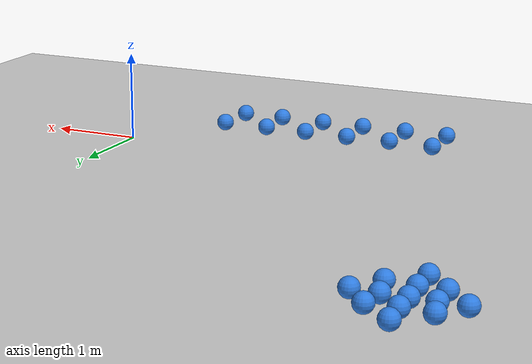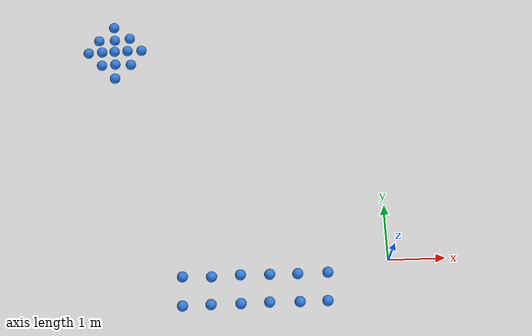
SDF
<sdf version="1.7">
 <world name="default">
  <light name="sun" type="directional">
   <pose>0 0 10 0 -0 0</pose>
   <diffuse>0.8 0.8 0.8 1</diffuse>
   <specular>0.2 0.2 0.2 1</specular>
   <attenuation>
    <range>1000</range>
    <constant>0.9</constant>
    <linear>0.01</linear>
    <quadratic>0.001</quadratic>
   </attenuation>
   <direction>-0.5 0.1 -0.9</direction>
   <spot><inner_angle>0</inner_angle><outer_angle>0</outer_angle><falloff>0</falloff></spot>
  </light>
  <model name="ground_plane">
   <static>1</static>
   <link name="link">
    <collision name="collision">
     <geometry><plane><normal>0 0 1</normal><size>100 100</size></plane></geometry>
     <surface>
      <contact><collide_bitmask>65535</collide_bitmask></contact>
      <friction><ode><mu>100</mu><mu2>50</mu2></ode></friction>
     </surface>
    </collision>
    <visual name="visual">
     <cast_shadows>0</cast_shadows>
     <geometry><plane><normal>0 0 1</normal><size>100 100</size></plane></geometry>
     <material>
      <script><uri>file://media/materials/scripts/gazebo.material</uri><name>Gazebo/Grey</name></script>
     </material>
    </visual>
   </link>
  </model>
  <gravity>0 0 -9.8</gravity>
  <magnetic_field>6e-06 2.3e-05 -4.2e-05</magnetic_field>
  <atmosphere type="adiabatic"/>
  <physics type="ode">
   <max_step_size>0.001</max_step_size>
   <real_time_factor>1</real_time_factor>
   <real_time_update_rate>1000</real_time_update_rate>
  </physics>
  <scene><ambient>0.4 0.4 0.4 1</ambient><background>0.7 0.7 0.7 1</background><shadows>1</shadows></scene>
  <spherical_coordinates>
   <surface_model>EARTH_WGS84</surface_model>
   <latitude_deg>0</latitude_deg>
   <longitude_deg>0</longitude_deg>
   <elevation>0</elevation>
   <heading_deg>0</heading_deg>
  </spherical_coordinates>
  <model name="withballs.sdf">
   <link name="link">
    <inertial>
     <mass>0.35</mass>
     <inertia><ixx>0.035</ixx><ixy>0</ixy><ixz>0</ixz><iyy>0.035</iyy><iyz>0</iyz><izz>0.035</izz></inertia>
    </inertial>
    <kinematic>1</kinematic>
    <pose>0.05 0 0.22 0 -0 0</pose>
    <visual name="visual">
     <geometry><sphere><radius>0.095</radius></sphere></geometry>
     <material>
      <script><name>Gazebo/Grey</name><uri>file://media/materials/scripts/gazebo.material</uri></script>
      <shader type="normal_map_object_space"><normal_map>__default__</normal_map></shader>
      <ambient>0.188 0.494 0.886 1</ambient>
      <diffuse>0.7 0.7 0.7 1</diffuse>
      <specular>0.01 0.01 0.01 1</specular>
      <emissive>0 0 0 1</emissive>
     </material>
     <pose>-0.02 -0.04 0.03 0 -0 0</pose>
    </visual>
    <collision name="collision">
     <pose>-0.02 -0.04 0.03 0 -0 0</pose>
     <geometry><sphere><radius>0.095</radius></sphere></geometry>
     <surface>
      <friction>
       <ode><mu>1</mu><mu2>1</mu2><fdir1>0 0 0</fdir1><slip1>0</slip1><slip2>0</slip2></ode>
       <torsional>
        <coefficient>1</coefficient>
        <patch_radius>0</patch_radius>
        <surface_radius>0</surface_radius>
        <use_patch_radius>1</use_patch_radius>
        <ode><slip>0</slip></ode>
       </torsional>
      </friction>
      <bounce><restitution_coefficient>0</restitution_coefficient><threshold>1e+06</threshold></bounce>
      <contact>
       <collide_without_contact>0</collide_without_contact>
       <collide_without_contact_bitmask>1</collide_without_contact_bitmask>
       <collide_bitmask>1</collide_bitmask>
       <ode>
        <soft_cfm>0</soft_cfm>
        <soft_erp>0.2</soft_erp>
        <kp>1e+13</kp>
        <kd>1</kd>
        <max_vel>0.01</max_vel>
        <min_depth>0</min_depth>
       </ode>
       <bullet>
        <split_impulse>1</split_impulse>
        <split_impulse_penetration_threshold>-0.01</split_impulse_penetration_threshold>
        <soft_cfm>0</soft_cfm>
        <soft_erp>0.2</soft_erp>
        <kp>1e+13</kp>
        <kd>1</kd>
       </bullet>
      </contact>
     </surface>
    </collision>
   </link>
   <link name="link_clone">
    <inertial>
     <mass>0.35</mass>
     <inertia><ixx>0.035</ixx><ixy>0</ixy><ixz>0</ixz><iyy>0.035</iyy><iyz>0</iyz><izz>0.035</izz></inertia>
    </inertial>
    <kinematic>1</kinematic>
    <pose>0.534124 -0.50195 0.22 0 -0 0</pose>
    <visual name="visual">
     <geometry><sphere><radius>0.095</radius></sphere></geometry>
     <material>
      <script><name>Gazebo/Grey</name><uri>file://media/materials/scripts/gazebo.material</uri></script>
      <shader type="normal_map_object_space"><normal_map>__default__</normal_map></shader>
      <ambient>0.188 0.494 0.886 1</ambient>
      <diffuse>0.7 0.7 0.7 1</diffuse>
      <specular>0.01 0.01 0.01 1</specular>
      <emissive>0 0 0 1</emissive>
     </material>
     <pose>-0.02 -0.04 0.03 0 -0 0</pose>
    </visual>
    <collision name="collision">
     <pose>-0.02 -0.04 0.03 0 -0 0</pose>
     <geometry><sphere><radius>0.095</radius></sphere></geometry>
     <surface>
      <friction>
       <ode><mu>1</mu><mu2>1</mu2><fdir1>0 0 0</fdir1><slip1>0</slip1><slip2>0</slip2></ode>
       <torsional>
        <coefficient>1</coefficient>
        <patch_radius>0</patch_radius>
        <surface_radius>0</surface_radius>
        <use_patch_radius>1</use_patch_radius>
        <ode><slip>0</slip></ode>
       </torsional>
      </friction>
      <bounce><restitution_coefficient>0</restitution_coefficient><threshold>1e+06</threshold></bounce>
      <contact>
       <collide_without_contact>0</collide_without_contact>
       <collide_without_contact_bitmask>1</collide_without_contact_bitmask>
       <collide_bitmask>1</collide_bitmask>
       <ode>
        <soft_cfm>0</soft_cfm>
        <soft_erp>0.2</soft_erp>
        <kp>1e+13</kp>
        <kd>1</kd>
        <max_vel>0.01</max_vel>
        <min_depth>0</min_depth>
       </ode>
       <bullet>
        <split_impulse>1</split_impulse>
        <split_impulse_penetration_threshold>-0.01</split_impulse_penetration_threshold>
        <soft_cfm>0</soft_cfm>
        <soft_erp>0.2</soft_erp>
        <kp>1e+13</kp>
        <kd>1</kd>
       </bullet>
      </contact>
     </surface>
    </collision>
   </link>
   <link name="link_clone_0">
    <inertial>
     <mass>0.35</mass>
     <inertia><ixx>0.035</ixx><ixy>0</ixy><ixz>0</ixz><iyy>0.035</iyy><iyz>0</iyz><izz>0.035</izz></inertia>
    </inertial>
    <kinematic>1</kinematic>
    <pose>1.04772 0.001281 0.22 0 -0 0</pose>
    <visual name="visual">
     <geometry><sphere><radius>0.095</radius></sphere></geometry>
     <material>
      <script><name>Gazebo/Grey</name><uri>file://media/materials/scripts/gazebo.material</uri></script>
      <shader type="normal_map_object_space"><normal_map>__default__</normal_map></shader>
      <ambient>0.188 0.494 0.886 1</ambient>
      <diffuse>0.7 0.7 0.7 1</diffuse>
      <specular>0.01 0.01 0.01 1</specular>
      <emissive>0 0 0 1</emissive>
     </material>
     <pose>-0.02 -0.04 0.03 0 -0 0</pose>
    </visual>
    <collision name="collision">
     <pose>-0.02 -0.04 0.03 0 -0 0</pose>
     <geometry><sphere><radius>0.095</radius></sphere></geometry>
     <surface>
      <friction>
       <ode><mu>1</mu><mu2>1</mu2><fdir1>0 0 0</fdir1><slip1>0</slip1><slip2>0</slip2></ode>
       <torsional>
        <coefficient>1</coefficient>
        <patch_radius>0</patch_radius>
        <surface_radius>0</surface_radius>
        <use_patch_radius>1</use_patch_radius>
        <ode><slip>0</slip></ode>
       </torsional>
      </friction>
      <bounce><restitution_coefficient>0</restitution_coefficient><threshold>1e+06</threshold></bounce>
      <contact>
       <collide_without_contact>0</collide_without_contact>
       <collide_without_contact_bitmask>1</collide_without_contact_bitmask>
       <collide_bitmask>1</collide_bitmask>
       <ode>
        <soft_cfm>0</soft_cfm>
        <soft_erp>0.2</soft_erp>
        <kp>1e+13</kp>
        <kd>1</kd>
        <max_vel>0.01</max_vel>
        <min_depth>0</min_depth>
       </ode>
       <bullet>
        <split_impulse>1</split_impulse>
        <split_impulse_penetration_threshold>-0.01</split_impulse_penetration_threshold>
        <soft_cfm>0</soft_cfm>
        <soft_erp>0.2</soft_erp>
        <kp>1e+13</kp>
        <kd>1</kd>
       </bullet>
      </contact>
     </surface>
    </collision>
   </link>
   <link name="link_clone_1">
    <inertial>
     <mass>0.35</mass>
     <inertia><ixx>0.035</ixx><ixy>0</ixy><ixz>0</ixz><iyy>0.035</iyy><iyz>0</iyz><izz>0.035</izz></inertia>
    </inertial>
    <kinematic>1</kinematic>
    <pose>1.5342 -0.493351 0.22 0 -0 0</pose>
    <visual name="visual">
     <geometry><sphere><radius>0.095</radius></sphere></geometry>
     <material>
      <script><name>Gazebo/Grey</name><uri>file://media/materials/scripts/gazebo.material</uri></script>
      <shader type="normal_map_object_space"><normal_map>__default__</normal_map></shader>
      <ambient>0.188 0.494 0.886 1</ambient>
      <diffuse>0.7 0.7 0.7 1</diffuse>
      <specular>0.01 0.01 0.01 1</specular>
      <emissive>0 0 0 1</emissive>
     </material>
     <pose>-0.02 -0.04 0.03 0 -0 0</pose>
    </visual>
    <collision name="collision">
     <pose>-0.02 -0.04 0.03 0 -0 0</pose>
     <geometry><sphere><radius>0.095</radius></sphere></geometry>
     <surface>
      <friction>
       <ode><mu>1</mu><mu2>1</mu2><fdir1>0 0 0</fdir1><slip1>0</slip1><slip2>0</slip2></ode>
       <torsional>
        <coefficient>1</coefficient>
        <patch_radius>0</patch_radius>
        <surface_radius>0</surface_radius>
        <use_patch_radius>1</use_patch_radius>
        <ode><slip>0</slip></ode>
       </torsional>
      </friction>
      <bounce><restitution_coefficient>0</restitution_coefficient><threshold>1e+06</threshold></bounce>
      <contact>
       <collide_without_contact>0</collide_without_contact>
       <collide_without_contact_bitmask>1</collide_without_contact_bitmask>
       <collide_bitmask>1</collide_bitmask>
       <ode>
        <soft_cfm>0</soft_cfm>
        <soft_erp>0.2</soft_erp>
        <kp>1e+13</kp>
        <kd>1</kd>
        <max_vel>0.01</max_vel>
        <min_depth>0</min_depth>
       </ode>
       <bullet>
        <split_impulse>1</split_impulse>
        <split_impulse_penetration_threshold>-0.01</split_impulse_penetration_threshold>
        <soft_cfm>0</soft_cfm>
        <soft_erp>0.2</soft_erp>
        <kp>1e+13</kp>
        <kd>1</kd>
       </bullet>
      </contact>
     </surface>
    </collision>
   </link>
   <link name="link_clone_10">
    <inertial>
     <mass>0.35</mass>
     <inertia><ixx>0.035</ixx><ixy>0</ixy><ixz>0</ixz><iyy>0.035</iyy><iyz>0</iyz><izz>0.035</izz></inertia>
    </inertial>
    <kinematic>1</kinematic>
    <pose>-1.20313 4.63054 0.22 0 -0 0</pose>
    <visual name="visual">
     <geometry><sphere><radius>0.095</radius></sphere></geometry>
     <material>
      <script><name>Gazebo/Grey</name><uri>file://media/materials/scripts/gazebo.material</uri></script>
      <shader type="normal_map_object_space"><normal_map>__default__</normal_map></shader>
      <ambient>0.188 0.494 0.886 1</ambient>
      <diffuse>0.7 0.7 0.7 1</diffuse>
      <specular>0.01 0.01 0.01 1</specular>
      <emissive>0 0 0 1</emissive>
     </material>
     <pose>-0.02 -0.04 0.03 0 -0 0</pose>
    </visual>
    <collision name="collision">
     <pose>-0.02 -0.04 0.03 0 -0 0</pose>
     <geometry><sphere><radius>0.095</radius></sphere></geometry>
     <surface>
      <friction>
       <ode><mu>1</mu><mu2>1</mu2><fdir1>0 0 0</fdir1><slip1>0</slip1><slip2>0</slip2></ode>
       <torsional>
        <coefficient>1</coefficient>
        <patch_radius>0</patch_radius>
        <surface_radius>0</surface_radius>
        <use_patch_radius>1</use_patch_radius>
        <ode><slip>0</slip></ode>
       </torsional>
      </friction>
      <bounce><restitution_coefficient>0</restitution_coefficient><threshold>1e+06</threshold></bounce>
      <contact>
       <collide_without_contact>0</collide_without_contact>
       <collide_without_contact_bitmask>1</collide_without_contact_bitmask>
       <collide_bitmask>1</collide_bitmask>
       <ode>
        <soft_cfm>0</soft_cfm>
        <soft_erp>0.2</soft_erp>
        <kp>1e+13</kp>
        <kd>1</kd>
        <max_vel>0.01</max_vel>
        <min_depth>0</min_depth>
       </ode>
       <bullet>
        <split_impulse>1</split_impulse>
        <split_impulse_penetration_threshold>-0.01</split_impulse_penetration_threshold>
        <soft_cfm>0</soft_cfm>
        <soft_erp>0.2</soft_erp>
        <kp>1e+13</kp>
        <kd>1</kd>
       </bullet>
      </contact>
     </surface>
    </collision>
   </link>
   <link name="link_clone_11">
    <inertial>
     <mass>0.35</mass>
     <inertia><ixx>0.035</ixx><ixy>0</ixy><ixz>0</ixz><iyy>0.035</iyy><iyz>0</iyz><izz>0.035</izz></inertia>
    </inertial>
    <kinematic>1</kinematic>
    <pose>-1.22209 4.90167 0.22 0 -0 0</pose>
    <visual name="visual">
     <geometry><sphere><radius>0.095</radius></sphere></geometry>
     <material>
      <script><name>Gazebo/Grey</name><uri>file://media/materials/scripts/gazebo.material</uri></script>
      <shader type="normal_map_object_space"><normal_map>__default__</normal_map></shader>
      <ambient>0.188 0.494 0.886 1</ambient>
      <diffuse>0.7 0.7 0.7 1</diffuse>
      <specular>0.01 0.01 0.01 1</specular>
      <emissive>0 0 0 1</emissive>
     </material>
     <pose>-0.02 -0.04 0.03 0 -0 0</pose>
    </visual>
    <collision name="collision">
     <pose>-0.02 -0.04 0.03 0 -0 0</pose>
     <geometry><sphere><radius>0.095</radius></sphere></geometry>
     <surface>
      <friction>
       <ode><mu>1</mu><mu2>1</mu2><fdir1>0 0 0</fdir1><slip1>0</slip1><slip2>0</slip2></ode>
       <torsional>
        <coefficient>1</coefficient>
        <patch_radius>0</patch_radius>
        <surface_radius>0</surface_radius>
        <use_patch_radius>1</use_patch_radius>
        <ode><slip>0</slip></ode>
       </torsional>
      </friction>
      <bounce><restitution_coefficient>0</restitution_coefficient><threshold>1e+06</threshold></bounce>
      <contact>
       <collide_without_contact>0</collide_without_contact>
       <collide_without_contact_bitmask>1</collide_without_contact_bitmask>
       <collide_bitmask>1</collide_bitmask>
       <ode>
        <soft_cfm>0</soft_cfm>
        <soft_erp>0.2</soft_erp>
        <kp>1e+13</kp>
        <kd>1</kd>
        <max_vel>0.01</max_vel>
        <min_depth>0</min_depth>
       </ode>
       <bullet>
        <split_impulse>1</split_impulse>
        <split_impulse_penetration_threshold>-0.01</split_impulse_penetration_threshold>
        <soft_cfm>0</soft_cfm>
        <soft_erp>0.2</soft_erp>
        <kp>1e+13</kp>
        <kd>1</kd>
       </bullet>
      </contact>
     </surface>
    </collision>
   </link>
   <link name="link_clone_12">
    <inertial>
     <mass>0.35</mass>
     <inertia><ixx>0.035</ixx><ixy>0</ixy><ixz>0</ixz><iyy>0.035</iyy><iyz>0</iyz><izz>0.035</izz></inertia>
    </inertial>
    <kinematic>1</kinematic>
    <pose>-1.18327 4.12666 0.22 0 -0 0</pose>
    <visual name="visual">
     <geometry><sphere><radius>0.095</radius></sphere></geometry>
     <material>
      <script><name>Gazebo/Grey</name><uri>file://media/materials/scripts/gazebo.material</uri></script>
      <shader type="normal_map_object_space"><normal_map>__default__</normal_map></shader>
      <ambient>0.188 0.494 0.886 1</ambient>
      <diffuse>0.7 0.7 0.7 1</diffuse>
      <specular>0.01 0.01 0.01 1</specular>
      <emissive>0 0 0 1</emissive>
     </material>
     <pose>-0.02 -0.04 0.03 0 -0 0</pose>
    </visual>
    <collision name="collision">
     <pose>-0.02 -0.04 0.03 0 -0 0</pose>
     <geometry><sphere><radius>0.095</radius></sphere></geometry>
     <surface>
      <friction>
       <ode><mu>1</mu><mu2>1</mu2><fdir1>0 0 0</fdir1><slip1>0</slip1><slip2>0</slip2></ode>
       <torsional>
        <coefficient>1</coefficient>
        <patch_radius>0</patch_radius>
        <surface_radius>0</surface_radius>
        <use_patch_radius>1</use_patch_radius>
        <ode><slip>0</slip></ode>
       </torsional>
      </friction>
      <bounce><restitution_coefficient>0</restitution_coefficient><threshold>1e+06</threshold></bounce>
      <contact>
       <collide_without_contact>0</collide_without_contact>
       <collide_without_contact_bitmask>1</collide_without_contact_bitmask>
       <collide_bitmask>1</collide_bitmask>
       <ode>
        <soft_cfm>0</soft_cfm>
        <soft_erp>0.2</soft_erp>
        <kp>1e+13</kp>
        <kd>1</kd>
        <max_vel>0.01</max_vel>
        <min_depth>0</min_depth>
       </ode>
       <bullet>
        <split_impulse>1</split_impulse>
        <split_impulse_penetration_threshold>-0.01</split_impulse_penetration_threshold>
        <soft_cfm>0</soft_cfm>
        <soft_erp>0.2</soft_erp>
        <kp>1e+13</kp>
        <kd>1</kd>
       </bullet>
      </contact>
     </surface>
    </collision>
   </link>
   <link name="link_clone_13">
    <inertial>
     <mass>0.35</mass>
     <inertia><ixx>0.035</ixx><ixy>0</ixy><ixz>0</ixz><iyy>0.035</iyy><iyz>0</iyz><izz>0.035</izz></inertia>
    </inertial>
    <kinematic>1</kinematic>
    <pose>-1.18332 3.83564 0.22 0 -0 0</pose>
    <visual name="visual">
     <geometry><sphere><radius>0.095</radius></sphere></geometry>
     <material>
      <script><name>Gazebo/Grey</name><uri>file://media/materials/scripts/gazebo.material</uri></script>
      <shader type="normal_map_object_space"><normal_map>__default__</normal_map></shader>
      <ambient>0.188 0.494 0.886 1</ambient>
      <diffuse>0.7 0.7 0.7 1</diffuse>
      <specular>0.01 0.01 0.01 1</specular>
      <emissive>0 0 0 1</emissive>
     </material>
     <pose>-0.02 -0.04 0.03 0 -0 0</pose>
    </visual>
    <collision name="collision">
     <pose>-0.02 -0.04 0.03 0 -0 0</pose>
     <geometry><sphere><radius>0.095</radius></sphere></geometry>
     <surface>
      <friction>
       <ode><mu>1</mu><mu2>1</mu2><fdir1>0 0 0</fdir1><slip1>0</slip1><slip2>0</slip2></ode>
       <torsional>
        <coefficient>1</coefficient>
        <patch_radius>0</patch_radius>
        <surface_radius>0</surface_radius>
        <use_patch_radius>1</use_patch_radius>
        <ode><slip>0</slip></ode>
       </torsional>
      </friction>
      <bounce><restitution_coefficient>0</restitution_coefficient><threshold>1e+06</threshold></bounce>
      <contact>
       <collide_without_contact>0</collide_without_contact>
       <collide_without_contact_bitmask>1</collide_without_contact_bitmask>
       <collide_bitmask>1</collide_bitmask>
       <ode>
        <soft_cfm>0</soft_cfm>
        <soft_erp>0.2</soft_erp>
        <kp>1e+13</kp>
        <kd>1</kd>
        <max_vel>0.01</max_vel>
        <min_depth>0</min_depth>
       </ode>
       <bullet>
        <split_impulse>1</split_impulse>
        <split_impulse_penetration_threshold>-0.01</split_impulse_penetration_threshold>
        <soft_cfm>0</soft_cfm>
        <soft_erp>0.2</soft_erp>
        <kp>1e+13</kp>
        <kd>1</kd>
       </bullet>
      </contact>
     </surface>
    </collision>
   </link>
   <link name="link_clone_14">
    <inertial>
     <mass>0.35</mass>
     <inertia><ixx>0.035</ixx><ixy>0</ixy><ixz>0</ixz><iyy>0.035</iyy><iyz>0</iyz><izz>0.035</izz></inertia>
    </inertial>
    <kinematic>1</kinematic>
    <pose>-1.20158 4.39545 0.22 0 -0 0</pose>
    <visual name="visual">
     <geometry><sphere><radius>0.095</radius></sphere></geometry>
     <material>
      <script><name>Gazebo/Grey</name><uri>file://media/materials/scripts/gazebo.material</uri></script>
      <shader type="normal_map_object_space"><normal_map>__default__</normal_map></shader>
      <ambient>0.188 0.494 0.886 1</ambient>
      <diffuse>0.7 0.7 0.7 1</diffuse>
      <specular>0.01 0.01 0.01 1</specular>
      <emissive>0 0 0 1</emissive>
     </material>
     <pose>-0.02 -0.04 0.03 0 -0 0</pose>
    </visual>
    <collision name="collision">
     <pose>-0.02 -0.04 0.03 0 -0 0</pose>
     <geometry><sphere><radius>0.095</radius></sphere></geometry>
     <surface>
      <friction>
       <ode><mu>1</mu><mu2>1</mu2><fdir1>0 0 0</fdir1><slip1>0</slip1><slip2>0</slip2></ode>
       <torsional>
        <coefficient>1</coefficient>
        <patch_radius>0</patch_radius>
        <surface_radius>0</surface_radius>
        <use_patch_radius>1</use_patch_radius>
        <ode><slip>0</slip></ode>
       </torsional>
      </friction>
      <bounce><restitution_coefficient>0</restitution_coefficient><threshold>1e+06</threshold></bounce>
      <contact>
       <collide_without_contact>0</collide_without_contact>
       <collide_without_contact_bitmask>1</collide_without_contact_bitmask>
       <collide_bitmask>1</collide_bitmask>
       <ode>
        <soft_cfm>0</soft_cfm>
        <soft_erp>0.2</soft_erp>
        <kp>1e+13</kp>
        <kd>1</kd>
        <max_vel>0.01</max_vel>
        <min_depth>0</min_depth>
       </ode>
       <bullet>
        <split_impulse>1</split_impulse>
        <split_impulse_penetration_threshold>-0.01</split_impulse_penetration_threshold>
        <soft_cfm>0</soft_cfm>
        <soft_erp>0.2</soft_erp>
        <kp>1e+13</kp>
        <kd>1</kd>
       </bullet>
      </contact>
     </surface>
    </collision>
   </link>
   <link name="link_clone_15">
    <inertial>
     <mass>0.35</mass>
     <inertia><ixx>0.035</ixx><ixy>0</ixy><ixz>0</ixz><iyy>0.035</iyy><iyz>0</iyz><izz>0.035</izz></inertia>
    </inertial>
    <kinematic>1</kinematic>
    <pose>-0.960965 4.40188 0.22 0 -0 0</pose>
    <visual name="visual">
     <geometry><sphere><radius>0.095</radius></sphere></geometry>
     <material>
      <script><name>Gazebo/Grey</name><uri>file://media/materials/scripts/gazebo.material</uri></script>
      <shader type="normal_map_object_space"><normal_map>__default__</normal_map></shader>
      <ambient>0.188 0.494 0.886 1</ambient>
      <diffuse>0.7 0.7 0.7 1</diffuse>
      <specular>0.01 0.01 0.01 1</specular>
      <emissive>0 0 0 1</emissive>
     </material>
     <pose>-0.02 -0.04 0.03 0 -0 0</pose>
    </visual>
    <collision name="collision">
     <pose>-0.02 -0.04 0.03 0 -0 0</pose>
     <geometry><sphere><radius>0.095</radius></sphere></geometry>
     <surface>
      <friction>
       <ode><mu>1</mu><mu2>1</mu2><fdir1>0 0 0</fdir1><slip1>0</slip1><slip2>0</slip2></ode>
       <torsional>
        <coefficient>1</coefficient>
        <patch_radius>0</patch_radius>
        <surface_radius>0</surface_radius>
        <use_patch_radius>1</use_patch_radius>
        <ode><slip>0</slip></ode>
       </torsional>
      </friction>
      <bounce><restitution_coefficient>0</restitution_coefficient><threshold>1e+06</threshold></bounce>
      <contact>
       <collide_without_contact>0</collide_without_contact>
       <collide_without_contact_bitmask>1</collide_without_contact_bitmask>
       <collide_bitmask>1</collide_bitmask>
       <ode>
        <soft_cfm>0</soft_cfm>
        <soft_erp>0.2</soft_erp>
        <kp>1e+13</kp>
        <kd>1</kd>
        <max_vel>0.01</max_vel>
        <min_depth>0</min_depth>
       </ode>
       <bullet>
        <split_impulse>1</split_impulse>
        <split_impulse_penetration_threshold>-0.01</split_impulse_penetration_threshold>
        <soft_cfm>0</soft_cfm>
        <soft_erp>0.2</soft_erp>
        <kp>1e+13</kp>
        <kd>1</kd>
       </bullet>
      </contact>
     </surface>
    </collision>
   </link>
   <link name="link_clone_16">
    <inertial>
     <mass>0.35</mass>
     <inertia><ixx>0.035</ixx><ixy>0</ixy><ixz>0</ixz><iyy>0.035</iyy><iyz>0</iyz><izz>0.035</izz></inertia>
    </inertial>
    <kinematic>1</kinematic>
    <pose>-1.43648 4.38969 0.22 0 -0 0</pose>
    <visual name="visual">
     <geometry><sphere><radius>0.095</radius></sphere></geometry>
     <material>
      <script><name>Gazebo/Grey</name><uri>file://media/materials/scripts/gazebo.material</uri></script>
      <shader type="normal_map_object_space"><normal_map>__default__</normal_map></shader>
      <ambient>0.188 0.494 0.886 1</ambient>
      <diffuse>0.7 0.7 0.7 1</diffuse>
      <specular>0.01 0.01 0.01 1</specular>
      <emissive>0 0 0 1</emissive>
     </material>
     <pose>-0.02 -0.04 0.03 0 -0 0</pose>
    </visual>
    <collision name="collision">
     <pose>-0.02 -0.04 0.03 0 -0 0</pose>
     <geometry><sphere><radius>0.095</radius></sphere></geometry>
     <surface>
      <friction>
       <ode><mu>1</mu><mu2>1</mu2><fdir1>0 0 0</fdir1><slip1>0</slip1><slip2>0</slip2></ode>
       <torsional>
        <coefficient>1</coefficient>
        <patch_radius>0</patch_radius>
        <surface_radius>0</surface_radius>
        <use_patch_radius>1</use_patch_radius>
        <ode><slip>0</slip></ode>
       </torsional>
      </friction>
      <bounce><restitution_coefficient>0</restitution_coefficient><threshold>1e+06</threshold></bounce>
      <contact>
       <collide_without_contact>0</collide_without_contact>
       <collide_without_contact_bitmask>1</collide_without_contact_bitmask>
       <collide_bitmask>1</collide_bitmask>
       <ode>
        <soft_cfm>0</soft_cfm>
        <soft_erp>0.2</soft_erp>
        <kp>1e+13</kp>
        <kd>1</kd>
        <max_vel>0.01</max_vel>
        <min_depth>0</min_depth>
       </ode>
       <bullet>
        <split_impulse>1</split_impulse>
        <split_impulse_penetration_threshold>-0.01</split_impulse_penetration_threshold>
        <soft_cfm>0</soft_cfm>
        <soft_erp>0.2</soft_erp>
        <kp>1e+13</kp>
        <kd>1</kd>
       </bullet>
      </contact>
     </surface>
    </collision>
   </link>
   <link name="link_clone_17">
    <inertial>
     <mass>0.35</mass>
     <inertia><ixx>0.035</ixx><ixy>0</ixy><ixz>0</ixz><iyy>0.035</iyy><iyz>0</iyz><izz>0.035</izz></inertia>
    </inertial>
    <kinematic>1</kinematic>
    <pose>-1.68778 4.37456 0.22 0 -0 0</pose>
    <visual name="visual">
     <geometry><sphere><radius>0.095</radius></sphere></geometry>
     <material>
      <script><name>Gazebo/Grey</name><uri>file://media/materials/scripts/gazebo.material</uri></script>
      <shader type="normal_map_object_space"><normal_map>__default__</normal_map></shader>
      <ambient>0.188 0.494 0.886 1</ambient>
      <diffuse>0.7 0.7 0.7 1</diffuse>
      <specular>0.01 0.01 0.01 1</specular>
      <emissive>0 0 0 1</emissive>
     </material>
     <pose>-0.02 -0.04 0.03 0 -0 0</pose>
    </visual>
    <collision name="collision">
     <pose>-0.02 -0.04 0.03 0 -0 0</pose>
     <geometry><sphere><radius>0.095</radius></sphere></geometry>
     <surface>
      <friction>
       <ode><mu>1</mu><mu2>1</mu2><fdir1>0 0 0</fdir1><slip1>0</slip1><slip2>0</slip2></ode>
       <torsional>
        <coefficient>1</coefficient>
        <patch_radius>0</patch_radius>
        <surface_radius>0</surface_radius>
        <use_patch_radius>1</use_patch_radius>
        <ode><slip>0</slip></ode>
       </torsional>
      </friction>
      <bounce><restitution_coefficient>0</restitution_coefficient><threshold>1e+06</threshold></bounce>
      <contact>
       <collide_without_contact>0</collide_without_contact>
       <collide_without_contact_bitmask>1</collide_without_contact_bitmask>
       <collide_bitmask>1</collide_bitmask>
       <ode>
        <soft_cfm>0</soft_cfm>
        <soft_erp>0.2</soft_erp>
        <kp>1e+13</kp>
        <kd>1</kd>
        <max_vel>0.01</max_vel>
        <min_depth>0</min_depth>
       </ode>
       <bullet>
        <split_impulse>1</split_impulse>
        <split_impulse_penetration_threshold>-0.01</split_impulse_penetration_threshold>
        <soft_cfm>0</soft_cfm>
        <soft_erp>0.2</soft_erp>
        <kp>1e+13</kp>
        <kd>1</kd>
       </bullet>
      </contact>
     </surface>
    </collision>
   </link>
   <link name="link_clone_18">
    <inertial>
     <mass>0.35</mass>
     <inertia><ixx>0.035</ixx><ixy>0</ixy><ixz>0</ixz><iyy>0.035</iyy><iyz>0</iyz><izz>0.035</izz></inertia>
    </inertial>
    <kinematic>1</kinematic>
    <pose>-0.70023 4.4003 0.22 0 -0 0</pose>
    <visual name="visual">
     <geometry><sphere><radius>0.095</radius></sphere></geometry>
     <material>
      <script><name>Gazebo/Grey</name><uri>file://media/materials/scripts/gazebo.material</uri></script>
      <shader type="normal_map_object_space"><normal_map>__default__</normal_map></shader>
      <ambient>0.188 0.494 0.886 1</ambient>
      <diffuse>0.7 0.7 0.7 1</diffuse>
      <specular>0.01 0.01 0.01 1</specular>
      <emissive>0 0 0 1</emissive>
     </material>
     <pose>-0.02 -0.04 0.03 0 -0 0</pose>
    </visual>
    <collision name="collision">
     <pose>-0.02 -0.04 0.03 0 -0 0</pose>
     <geometry><sphere><radius>0.095</radius></sphere></geometry>
     <surface>
      <friction>
       <ode><mu>1</mu><mu2>1</mu2><fdir1>0 0 0</fdir1><slip1>0</slip1><slip2>0</slip2></ode>
       <torsional>
        <coefficient>1</coefficient>
        <patch_radius>0</patch_radius>
        <surface_radius>0</surface_radius>
        <use_patch_radius>1</use_patch_radius>
        <ode><slip>0</slip></ode>
       </torsional>
      </friction>
      <bounce><restitution_coefficient>0</restitution_coefficient><threshold>1e+06</threshold></bounce>
      <contact>
       <collide_without_contact>0</collide_without_contact>
       <collide_without_contact_bitmask>1</collide_without_contact_bitmask>
       <collide_bitmask>1</collide_bitmask>
       <ode>
        <soft_cfm>0</soft_cfm>
        <soft_erp>0.2</soft_erp>
        <kp>1e+13</kp>
        <kd>1</kd>
        <max_vel>0.01</max_vel>
        <min_depth>0</min_depth>
       </ode>
       <bullet>
        <split_impulse>1</split_impulse>
        <split_impulse_penetration_threshold>-0.01</split_impulse_penetration_threshold>
        <soft_cfm>0</soft_cfm>
        <soft_erp>0.2</soft_erp>
        <kp>1e+13</kp>
        <kd>1</kd>
       </bullet>
      </contact>
     </surface>
    </collision>
   </link>
   <link name="link_clone_19">
    <inertial>
     <mass>0.35</mass>
     <inertia><ixx>0.035</ixx><ixy>0</ixy><ixz>0</ixz><iyy>0.035</iyy><iyz>0</iyz><izz>0.035</izz></inertia>
    </inertial>
    <kinematic>1</kinematic>
    <pose>-0.92188 4.66239 0.22 0 -0 0</pose>
    <visual name="visual">
     <geometry><sphere><radius>0.095</radius></sphere></geometry>
     <material>
      <script><name>Gazebo/Grey</name><uri>file://media/materials/scripts/gazebo.material</uri></script>
      <shader type="normal_map_object_space"><normal_map>__default__</normal_map></shader>
      <ambient>0.188 0.494 0.886 1</ambient>
      <diffuse>0.7 0.7 0.7 1</diffuse>
      <specular>0.01 0.01 0.01 1</specular>
      <emissive>0 0 0 1</emissive>
     </material>
     <pose>-0.02 -0.04 0.03 0 -0 0</pose>
    </visual>
    <collision name="collision">
     <pose>-0.02 -0.04 0.03 0 -0 0</pose>
     <geometry><sphere><radius>0.095</radius></sphere></geometry>
     <surface>
      <friction>
       <ode><mu>1</mu><mu2>1</mu2><fdir1>0 0 0</fdir1><slip1>0</slip1><slip2>0</slip2></ode>
       <torsional>
        <coefficient>1</coefficient>
        <patch_radius>0</patch_radius>
        <surface_radius>0</surface_radius>
        <use_patch_radius>1</use_patch_radius>
        <ode><slip>0</slip></ode>
       </torsional>
      </friction>
      <bounce><restitution_coefficient>0</restitution_coefficient><threshold>1e+06</threshold></bounce>
      <contact>
       <collide_without_contact>0</collide_without_contact>
       <collide_without_contact_bitmask>1</collide_without_contact_bitmask>
       <collide_bitmask>1</collide_bitmask>
       <ode>
        <soft_cfm>0</soft_cfm>
        <soft_erp>0.2</soft_erp>
        <kp>1e+13</kp>
        <kd>1</kd>
        <max_vel>0.01</max_vel>
        <min_depth>0</min_depth>
       </ode>
       <bullet>
        <split_impulse>1</split_impulse>
        <split_impulse_penetration_threshold>-0.01</split_impulse_penetration_threshold>
        <soft_cfm>0</soft_cfm>
        <soft_erp>0.2</soft_erp>
        <kp>1e+13</kp>
        <kd>1</kd>
       </bullet>
      </contact>
     </surface>
    </collision>
   </link>
   <link name="link_clone_2">
    <inertial>
     <mass>0.35</mass>
     <inertia><ixx>0.035</ixx><ixy>0</ixy><ixz>0</ixz><iyy>0.035</iyy><iyz>0</iyz><izz>0.035</izz></inertia>
    </inertial>
    <kinematic>1</kinematic>
    <pose>2.03508 -0.010983 0.22 0 -0 0</pose>
    <visual name="visual">
     <geometry><sphere><radius>0.095</radius></sphere></geometry>
     <material>
      <script><name>Gazebo/Grey</name><uri>file://media/materials/scripts/gazebo.material</uri></script>
      <shader type="normal_map_object_space"><normal_map>__default__</normal_map></shader>
      <ambient>0.188 0.494 0.886 1</ambient>
      <diffuse>0.7 0.7 0.7 1</diffuse>
      <specular>0.01 0.01 0.01 1</specular>
      <emissive>0 0 0 1</emissive>
     </material>
     <pose>-0.02 -0.04 0.03 0 -0 0</pose>
    </visual>
    <collision name="collision">
     <pose>-0.02 -0.04 0.03 0 -0 0</pose>
     <geometry><sphere><radius>0.095</radius></sphere></geometry>
     <surface>
      <friction>
       <ode><mu>1</mu><mu2>1</mu2><fdir1>0 0 0</fdir1><slip1>0</slip1><slip2>0</slip2></ode>
       <torsional>
        <coefficient>1</coefficient>
        <patch_radius>0</patch_radius>
        <surface_radius>0</surface_radius>
        <use_patch_radius>1</use_patch_radius>
        <ode><slip>0</slip></ode>
       </torsional>
      </friction>
      <bounce><restitution_coefficient>0</restitution_coefficient><threshold>1e+06</threshold></bounce>
      <contact>
       <collide_without_contact>0</collide_without_contact>
       <collide_without_contact_bitmask>1</collide_without_contact_bitmask>
       <collide_bitmask>1</collide_bitmask>
       <ode>
        <soft_cfm>0</soft_cfm>
        <soft_erp>0.2</soft_erp>
        <kp>1e+13</kp>
        <kd>1</kd>
        <max_vel>0.01</max_vel>
        <min_depth>0</min_depth>
       </ode>
       <bullet>
        <split_impulse>1</split_impulse>
        <split_impulse_penetration_threshold>-0.01</split_impulse_penetration_threshold>
        <soft_cfm>0</soft_cfm>
        <soft_erp>0.2</soft_erp>
        <kp>1e+13</kp>
        <kd>1</kd>
       </bullet>
      </contact>
     </surface>
    </collision>
   </link>
   <link name="link_clone_20">
    <inertial>
     <mass>0.35</mass>
     <inertia><ixx>0.035</ixx><ixy>0</ixy><ixz>0</ixz><iyy>0.035</iyy><iyz>0</iyz><izz>0.035</izz></inertia>
    </inertial>
    <kinematic>1</kinematic>
    <pose>-1.49573 4.62837 0.22 0 -0 0</pose>
    <visual name="visual">
     <geometry><sphere><radius>0.095</radius></sphere></geometry>
     <material>
      <script><name>Gazebo/Grey</name><uri>file://media/materials/scripts/gazebo.material</uri></script>
      <shader type="normal_map_object_space"><normal_map>__default__</normal_map></shader>
      <ambient>0.188 0.494 0.886 1</ambient>
      <diffuse>0.7 0.7 0.7 1</diffuse>
      <specular>0.01 0.01 0.01 1</specular>
      <emissive>0 0 0 1</emissive>
     </material>
     <pose>-0.02 -0.04 0.03 0 -0 0</pose>
    </visual>
    <collision name="collision">
     <pose>-0.02 -0.04 0.03 0 -0 0</pose>
     <geometry><sphere><radius>0.095</radius></sphere></geometry>
     <surface>
      <friction>
       <ode><mu>1</mu><mu2>1</mu2><fdir1>0 0 0</fdir1><slip1>0</slip1><slip2>0</slip2></ode>
       <torsional>
        <coefficient>1</coefficient>
        <patch_radius>0</patch_radius>
        <surface_radius>0</surface_radius>
        <use_patch_radius>1</use_patch_radius>
        <ode><slip>0</slip></ode>
       </torsional>
      </friction>
      <bounce><restitution_coefficient>0</restitution_coefficient><threshold>1e+06</threshold></bounce>
      <contact>
       <collide_without_contact>0</collide_without_contact>
       <collide_without_contact_bitmask>1</collide_without_contact_bitmask>
       <collide_bitmask>1</collide_bitmask>
       <ode>
        <soft_cfm>0</soft_cfm>
        <soft_erp>0.2</soft_erp>
        <kp>1e+13</kp>
        <kd>1</kd>
        <max_vel>0.01</max_vel>
        <min_depth>0</min_depth>
       </ode>
       <bullet>
        <split_impulse>1</split_impulse>
        <split_impulse_penetration_threshold>-0.01</split_impulse_penetration_threshold>
        <soft_cfm>0</soft_cfm>
        <soft_erp>0.2</soft_erp>
        <kp>1e+13</kp>
        <kd>1</kd>
       </bullet>
      </contact>
     </surface>
    </collision>
   </link>
   <link name="link_clone_21">
    <inertial>
     <mass>0.35</mass>
     <inertia><ixx>0.035</ixx><ixy>0</ixy><ixz>0</ixz><iyy>0.035</iyy><iyz>0</iyz><izz>0.035</izz></inertia>
    </inertial>
    <kinematic>1</kinematic>
    <pose>-1.4338 4.1118 0.22 0 -0 0</pose>
    <visual name="visual">
     <geometry><sphere><radius>0.095</radius></sphere></geometry>
     <material>
      <script><name>Gazebo/Grey</name><uri>file://media/materials/scripts/gazebo.material</uri></script>
      <shader type="normal_map_object_space"><normal_map>__default__</normal_map></shader>
      <ambient>0.188 0.494 0.886 1</ambient>
      <diffuse>0.7 0.7 0.7 1</diffuse>
      <specular>0.01 0.01 0.01 1</specular>
      <emissive>0 0 0 1</emissive>
     </material>
     <pose>-0.02 -0.04 0.03 0 -0 0</pose>
    </visual>
    <collision name="collision">
     <pose>-0.02 -0.04 0.03 0 -0 0</pose>
     <geometry><sphere><radius>0.095</radius></sphere></geometry>
     <surface>
      <friction>
       <ode><mu>1</mu><mu2>1</mu2><fdir1>0 0 0</fdir1><slip1>0</slip1><slip2>0</slip2></ode>
       <torsional>
        <coefficient>1</coefficient>
        <patch_radius>0</patch_radius>
        <surface_radius>0</surface_radius>
        <use_patch_radius>1</use_patch_radius>
        <ode><slip>0</slip></ode>
       </torsional>
      </friction>
      <bounce><restitution_coefficient>0</restitution_coefficient><threshold>1e+06</threshold></bounce>
      <contact>
       <collide_without_contact>0</collide_without_contact>
       <collide_without_contact_bitmask>1</collide_without_contact_bitmask>
       <collide_bitmask>1</collide_bitmask>
       <ode>
        <soft_cfm>0</soft_cfm>
        <soft_erp>0.2</soft_erp>
        <kp>1e+13</kp>
        <kd>1</kd>
        <max_vel>0.01</max_vel>
        <min_depth>0</min_depth>
       </ode>
       <bullet>
        <split_impulse>1</split_impulse>
        <split_impulse_penetration_threshold>-0.01</split_impulse_penetration_threshold>
        <soft_cfm>0</soft_cfm>
        <soft_erp>0.2</soft_erp>
        <kp>1e+13</kp>
        <kd>1</kd>
       </bullet>
      </contact>
     </surface>
    </collision>
   </link>
   <link name="link_clone_22">
    <inertial>
     <mass>0.35</mass>
     <inertia><ixx>0.035</ixx><ixy>0</ixy><ixz>0</ixz><iyy>0.035</iyy><iyz>0</iyz><izz>0.035</izz></inertia>
    </inertial>
    <kinematic>1</kinematic>
    <pose>-0.894178 4.11135 0.22 0 -0 0</pose>
    <visual name="visual">
     <geometry><sphere><radius>0.095</radius></sphere></geometry>
     <material>
      <script><name>Gazebo/Grey</name><uri>file://media/materials/scripts/gazebo.material</uri></script>
      <shader type="normal_map_object_space"><normal_map>__default__</normal_map></shader>
      <ambient>0.188 0.494 0.886 1</ambient>
      <diffuse>0.7 0.7 0.7 1</diffuse>
      <specular>0.01 0.01 0.01 1</specular>
      <emissive>0 0 0 1</emissive>
     </material>
     <pose>-0.02 -0.04 0.03 0 -0 0</pose>
    </visual>
    <collision name="collision">
     <pose>-0.02 -0.04 0.03 0 -0 0</pose>
     <geometry><sphere><radius>0.095</radius></sphere></geometry>
     <surface>
      <friction>
       <ode><mu>1</mu><mu2>1</mu2><fdir1>0 0 0</fdir1><slip1>0</slip1><slip2>0</slip2></ode>
       <torsional>
        <coefficient>1</coefficient>
        <patch_radius>0</patch_radius>
        <surface_radius>0</surface_radius>
        <use_patch_radius>1</use_patch_radius>
        <ode><slip>0</slip></ode>
       </torsional>
      </friction>
      <bounce><restitution_coefficient>0</restitution_coefficient><threshold>1e+06</threshold></bounce>
      <contact>
       <collide_without_contact>0</collide_without_contact>
       <collide_without_contact_bitmask>1</collide_without_contact_bitmask>
       <collide_bitmask>1</collide_bitmask>
       <ode>
        <soft_cfm>0</soft_cfm>
        <soft_erp>0.2</soft_erp>
        <kp>1e+13</kp>
        <kd>1</kd>
        <max_vel>0.01</max_vel>
        <min_depth>0</min_depth>
       </ode>
       <bullet>
        <split_impulse>1</split_impulse>
        <split_impulse_penetration_threshold>-0.01</split_impulse_penetration_threshold>
        <soft_cfm>0</soft_cfm>
        <soft_erp>0.2</soft_erp>
        <kp>1e+13</kp>
        <kd>1</kd>
       </bullet>
      </contact>
     </surface>
    </collision>
   </link>
   <link name="link_clone_3">
    <inertial>
     <mass>0.35</mass>
     <inertia><ixx>0.035</ixx><ixy>0</ixy><ixz>0</ixz><iyy>0.035</iyy><iyz>0</iyz><izz>0.035</izz></inertia>
    </inertial>
    <kinematic>1</kinematic>
    <pose>2.52585 -0.500547 0.22 0 -0 0</pose>
    <visual name="visual">
     <geometry><sphere><radius>0.095</radius></sphere></geometry>
     <material>
      <script><name>Gazebo/Grey</name><uri>file://media/materials/scripts/gazebo.material</uri></script>
      <shader type="normal_map_object_space"><normal_map>__default__</normal_map></shader>
      <ambient>0.188 0.494 0.886 1</ambient>
      <diffuse>0.7 0.7 0.7 1</diffuse>
      <specular>0.01 0.01 0.01 1</specular>
      <emissive>0 0 0 1</emissive>
     </material>
     <pose>-0.02 -0.04 0.03 0 -0 0</pose>
    </visual>
    <collision name="collision">
     <pose>-0.02 -0.04 0.03 0 -0 0</pose>
     <geometry><sphere><radius>0.095</radius></sphere></geometry>
     <surface>
      <friction>
       <ode><mu>1</mu><mu2>1</mu2><fdir1>0 0 0</fdir1><slip1>0</slip1><slip2>0</slip2></ode>
       <torsional>
        <coefficient>1</coefficient>
        <patch_radius>0</patch_radius>
        <surface_radius>0</surface_radius>
        <use_patch_radius>1</use_patch_radius>
        <ode><slip>0</slip></ode>
       </torsional>
      </friction>
      <bounce><restitution_coefficient>0</restitution_coefficient><threshold>1e+06</threshold></bounce>
      <contact>
       <collide_without_contact>0</collide_without_contact>
       <collide_without_contact_bitmask>1</collide_without_contact_bitmask>
       <collide_bitmask>1</collide_bitmask>
       <ode>
        <soft_cfm>0</soft_cfm>
        <soft_erp>0.2</soft_erp>
        <kp>1e+13</kp>
        <kd>1</kd>
        <max_vel>0.01</max_vel>
        <min_depth>0</min_depth>
       </ode>
       <bullet>
        <split_impulse>1</split_impulse>
        <split_impulse_penetration_threshold>-0.01</split_impulse_penetration_threshold>
        <soft_cfm>0</soft_cfm>
        <soft_erp>0.2</soft_erp>
        <kp>1e+13</kp>
        <kd>1</kd>
       </bullet>
      </contact>
     </surface>
    </collision>
   </link>
   <link name="link_clone_4">
    <inertial>
     <mass>0.35</mass>
     <inertia><ixx>0.035</ixx><ixy>0</ixy><ixz>0</ixz><iyy>0.035</iyy><iyz>0</iyz><izz>0.035</izz></inertia>
    </inertial>
    <kinematic>1</kinematic>
    <pose>2.55432 -0.003828 0.22 0 -0 0</pose>
    <visual name="visual">
     <geometry><sphere><radius>0.095</radius></sphere></geometry>
     <material>
      <script><name>Gazebo/Grey</name><uri>file://media/materials/scripts/gazebo.material</uri></script>
      <shader type="normal_map_object_space"><normal_map>__default__</normal_map></shader>
      <ambient>0.188 0.494 0.886 1</ambient>
      <diffuse>0.7 0.7 0.7 1</diffuse>
      <specular>0.01 0.01 0.01 1</specular>
      <emissive>0 0 0 1</emissive>
     </material>
     <pose>-0.02 -0.04 0.03 0 -0 0</pose>
    </visual>
    <collision name="collision">
     <pose>-0.02 -0.04 0.03 0 -0 0</pose>
     <geometry><sphere><radius>0.095</radius></sphere></geometry>
     <surface>
      <friction>
       <ode><mu>1</mu><mu2>1</mu2><fdir1>0 0 0</fdir1><slip1>0</slip1><slip2>0</slip2></ode>
       <torsional>
        <coefficient>1</coefficient>
        <patch_radius>0</patch_radius>
        <surface_radius>0</surface_radius>
        <use_patch_radius>1</use_patch_radius>
        <ode><slip>0</slip></ode>
       </torsional>
      </friction>
      <bounce><restitution_coefficient>0</restitution_coefficient><threshold>1e+06</threshold></bounce>
      <contact>
       <collide_without_contact>0</collide_without_contact>
       <collide_without_contact_bitmask>1</collide_without_contact_bitmask>
       <collide_bitmask>1</collide_bitmask>
       <ode>
        <soft_cfm>0</soft_cfm>
        <soft_erp>0.2</soft_erp>
        <kp>1e+13</kp>
        <kd>1</kd>
        <max_vel>0.01</max_vel>
        <min_depth>0</min_depth>
       </ode>
       <bullet>
        <split_impulse>1</split_impulse>
        <split_impulse_penetration_threshold>-0.01</split_impulse_penetration_threshold>
        <soft_cfm>0</soft_cfm>
        <soft_erp>0.2</soft_erp>
        <kp>1e+13</kp>
        <kd>1</kd>
       </bullet>
      </contact>
     </surface>
    </collision>
   </link>
   <link name="link_clone_5">
    <inertial>
     <mass>0.35</mass>
     <inertia><ixx>0.035</ixx><ixy>0</ixy><ixz>0</ixz><iyy>0.035</iyy><iyz>0</iyz><izz>0.035</izz></inertia>
    </inertial>
    <kinematic>1</kinematic>
    <pose>2.05251 -0.501445 0.22 0 -0 0</pose>
    <visual name="visual">
     <geometry><sphere><radius>0.095</radius></sphere></geometry>
     <material>
      <script><name>Gazebo/Grey</name><uri>file://media/materials/scripts/gazebo.material</uri></script>
      <shader type="normal_map_object_space"><normal_map>__default__</normal_map></shader>
      <ambient>0.188 0.494 0.886 1</ambient>
      <diffuse>0.7 0.7 0.7 1</diffuse>
      <specular>0.01 0.01 0.01 1</specular>
      <emissive>0 0 0 1</emissive>
     </material>
     <pose>-0.02 -0.04 0.03 0 -0 0</pose>
    </visual>
    <collision name="collision">
     <pose>-0.02 -0.04 0.03 0 -0 0</pose>
     <geometry><sphere><radius>0.095</radius></sphere></geometry>
     <surface>
      <friction>
       <ode><mu>1</mu><mu2>1</mu2><fdir1>0 0 0</fdir1><slip1>0</slip1><slip2>0</slip2></ode>
       <torsional>
        <coefficient>1</coefficient>
        <patch_radius>0</patch_radius>
        <surface_radius>0</surface_radius>
        <use_patch_radius>1</use_patch_radius>
        <ode><slip>0</slip></ode>
       </torsional>
      </friction>
      <bounce><restitution_coefficient>0</restitution_coefficient><threshold>1e+06</threshold></bounce>
      <contact>
       <collide_without_contact>0</collide_without_contact>
       <collide_without_contact_bitmask>1</collide_without_contact_bitmask>
       <collide_bitmask>1</collide_bitmask>
       <ode>
        <soft_cfm>0</soft_cfm>
        <soft_erp>0.2</soft_erp>
        <kp>1e+13</kp>
        <kd>1</kd>
        <max_vel>0.01</max_vel>
        <min_depth>0</min_depth>
       </ode>
       <bullet>
        <split_impulse>1</split_impulse>
        <split_impulse_penetration_threshold>-0.01</split_impulse_penetration_threshold>
        <soft_cfm>0</soft_cfm>
        <soft_erp>0.2</soft_erp>
        <kp>1e+13</kp>
        <kd>1</kd>
       </bullet>
      </contact>
     </surface>
    </collision>
   </link>
   <link name="link_clone_6">
    <inertial>
     <mass>0.35</mass>
     <inertia><ixx>0.035</ixx><ixy>0</ixy><ixz>0</ixz><iyy>0.035</iyy><iyz>0</iyz><izz>0.035</izz></inertia>
    </inertial>
    <kinematic>1</kinematic>
    <pose>1.551 -0.006045 0.22 0 -0 0</pose>
    <visual name="visual">
     <geometry><sphere><radius>0.095</radius></sphere></geometry>
     <material>
      <script><name>Gazebo/Grey</name><uri>file://media/materials/scripts/gazebo.material</uri></script>
      <shader type="normal_map_object_space"><normal_map>__default__</normal_map></shader>
      <ambient>0.188 0.494 0.886 1</ambient>
      <diffuse>0.7 0.7 0.7 1</diffuse>
      <specular>0.01 0.01 0.01 1</specular>
      <emissive>0 0 0 1</emissive>
     </material>
     <pose>-0.02 -0.04 0.03 0 -0 0</pose>
    </visual>
    <collision name="collision">
     <pose>-0.02 -0.04 0.03 0 -0 0</pose>
     <geometry><sphere><radius>0.095</radius></sphere></geometry>
     <surface>
      <friction>
       <ode><mu>1</mu><mu2>1</mu2><fdir1>0 0 0</fdir1><slip1>0</slip1><slip2>0</slip2></ode>
       <torsional>
        <coefficient>1</coefficient>
        <patch_radius>0</patch_radius>
        <surface_radius>0</surface_radius>
        <use_patch_radius>1</use_patch_radius>
        <ode><slip>0</slip></ode>
       </torsional>
      </friction>
      <bounce><restitution_coefficient>0</restitution_coefficient><threshold>1e+06</threshold></bounce>
      <contact>
       <collide_without_contact>0</collide_without_contact>
       <collide_without_contact_bitmask>1</collide_without_contact_bitmask>
       <collide_bitmask>1</collide_bitmask>
       <ode>
        <soft_cfm>0</soft_cfm>
        <soft_erp>0.2</soft_erp>
        <kp>1e+13</kp>
        <kd>1</kd>
        <max_vel>0.01</max_vel>
        <min_depth>0</min_depth>
       </ode>
       <bullet>
        <split_impulse>1</split_impulse>
        <split_impulse_penetration_threshold>-0.01</split_impulse_penetration_threshold>
        <soft_cfm>0</soft_cfm>
        <soft_erp>0.2</soft_erp>
        <kp>1e+13</kp>
        <kd>1</kd>
       </bullet>
      </contact>
     </surface>
    </collision>
   </link>
   <link name="link_clone_7">
    <inertial>
     <mass>0.35</mass>
     <inertia><ixx>0.035</ixx><ixy>0</ixy><ixz>0</ixz><iyy>0.035</iyy><iyz>0</iyz><izz>0.035</izz></inertia>
    </inertial>
    <kinematic>1</kinematic>
    <pose>1.04527 -0.501756 0.22 0 -0 0</pose>
    <visual name="visual">
     <geometry><sphere><radius>0.095</radius></sphere></geometry>
     <material>
      <script><name>Gazebo/Grey</name><uri>file://media/materials/scripts/gazebo.material</uri></script>
      <shader type="normal_map_object_space"><normal_map>__default__</normal_map></shader>
      <ambient>0.188 0.494 0.886 1</ambient>
      <diffuse>0.7 0.7 0.7 1</diffuse>
      <specular>0.01 0.01 0.01 1</specular>
      <emissive>0 0 0 1</emissive>
     </material>
     <pose>-0.02 -0.04 0.03 0 -0 0</pose>
    </visual>
    <collision name="collision">
     <pose>-0.02 -0.04 0.03 0 -0 0</pose>
     <geometry><sphere><radius>0.095</radius></sphere></geometry>
     <surface>
      <friction>
       <ode><mu>1</mu><mu2>1</mu2><fdir1>0 0 0</fdir1><slip1>0</slip1><slip2>0</slip2></ode>
       <torsional>
        <coefficient>1</coefficient>
        <patch_radius>0</patch_radius>
        <surface_radius>0</surface_radius>
        <use_patch_radius>1</use_patch_radius>
        <ode><slip>0</slip></ode>
       </torsional>
      </friction>
      <bounce><restitution_coefficient>0</restitution_coefficient><threshold>1e+06</threshold></bounce>
      <contact>
       <collide_without_contact>0</collide_without_contact>
       <collide_without_contact_bitmask>1</collide_without_contact_bitmask>
       <collide_bitmask>1</collide_bitmask>
       <ode>
        <soft_cfm>0</soft_cfm>
        <soft_erp>0.2</soft_erp>
        <kp>1e+13</kp>
        <kd>1</kd>
        <max_vel>0.01</max_vel>
        <min_depth>0</min_depth>
       </ode>
       <bullet>
        <split_impulse>1</split_impulse>
        <split_impulse_penetration_threshold>-0.01</split_impulse_penetration_threshold>
        <soft_cfm>0</soft_cfm>
        <soft_erp>0.2</soft_erp>
        <kp>1e+13</kp>
        <kd>1</kd>
       </bullet>
      </contact>
     </surface>
    </collision>
   </link>
   <link name="link_clone_8">
    <inertial>
     <mass>0.35</mass>
     <inertia><ixx>0.035</ixx><ixy>0</ixy><ixz>0</ixz><iyy>0.035</iyy><iyz>0</iyz><izz>0.035</izz></inertia>
    </inertial>
    <kinematic>1</kinematic>
    <pose>0.5503 -0.016262 0.22 0 -0 0</pose>
    <visual name="visual">
     <geometry><sphere><radius>0.095</radius></sphere></geometry>
     <material>
      <script><name>Gazebo/Grey</name><uri>file://media/materials/scripts/gazebo.material</uri></script>
      <shader type="normal_map_object_space"><normal_map>__default__</normal_map></shader>
      <ambient>0.188 0.494 0.886 1</ambient>
      <diffuse>0.7 0.7 0.7 1</diffuse>
      <specular>0.01 0.01 0.01 1</specular>
      <emissive>0 0 0 1</emissive>
     </material>
     <pose>-0.02 -0.04 0.03 0 -0 0</pose>
    </visual>
    <collision name="collision">
     <pose>-0.02 -0.04 0.03 0 -0 0</pose>
     <geometry><sphere><radius>0.095</radius></sphere></geometry>
     <surface>
      <friction>
       <ode><mu>1</mu><mu2>1</mu2><fdir1>0 0 0</fdir1><slip1>0</slip1><slip2>0</slip2></ode>
       <torsional>
        <coefficient>1</coefficient>
        <patch_radius>0</patch_radius>
        <surface_radius>0</surface_radius>
        <use_patch_radius>1</use_patch_radius>
        <ode><slip>0</slip></ode>
       </torsional>
      </friction>
      <bounce><restitution_coefficient>0</restitution_coefficient><threshold>1e+06</threshold></bounce>
      <contact>
       <collide_without_contact>0</collide_without_contact>
       <collide_without_contact_bitmask>1</collide_without_contact_bitmask>
       <collide_bitmask>1</collide_bitmask>
       <ode>
        <soft_cfm>0</soft_cfm>
        <soft_erp>0.2</soft_erp>
        <kp>1e+13</kp>
        <kd>1</kd>
        <max_vel>0.01</max_vel>
        <min_depth>0</min_depth>
       </ode>
       <bullet>
        <split_impulse>1</split_impulse>
        <split_impulse_penetration_threshold>-0.01</split_impulse_penetration_threshold>
        <soft_cfm>0</soft_cfm>
        <soft_erp>0.2</soft_erp>
        <kp>1e+13</kp>
        <kd>1</kd>
       </bullet>
      </contact>
     </surface>
    </collision>
   </link>
   <link name="link_clone_9">
    <inertial>
     <mass>0.35</mass>
     <inertia><ixx>0.035</ixx><ixy>0</ixy><ixz>0</ixz><iyy>0.035</iyy><iyz>0</iyz><izz>0.035</izz></inertia>
    </inertial>
    <kinematic>1</kinematic>
    <pose>0.047387 -0.508361 0.22 0 -0 0</pose>
    <visual name="visual">
     <geometry><sphere><radius>0.095</radius></sphere></geometry>
     <material>
      <script><name>Gazebo/Grey</name><uri>file://media/materials/scripts/gazebo.material</uri></script>
      <shader type="normal_map_object_space"><normal_map>__default__</normal_map></shader>
      <ambient>0.188 0.494 0.886 1</ambient>
      <diffuse>0.7 0.7 0.7 1</diffuse>
      <specular>0.01 0.01 0.01 1</specular>
      <emissive>0 0 0 1</emissive>
     </material>
     <pose>-0.02 -0.04 0.03 0 -0 0</pose>
    </visual>
    <collision name="collision">
     <pose>-0.02 -0.04 0.03 0 -0 0</pose>
     <geometry><sphere><radius>0.095</radius></sphere></geometry>
     <surface>
      <friction>
       <ode><mu>1</mu><mu2>1</mu2><fdir1>0 0 0</fdir1><slip1>0</slip1><slip2>0</slip2></ode>
       <torsional>
        <coefficient>1</coefficient>
        <patch_radius>0</patch_radius>
        <surface_radius>0</surface_radius>
        <use_patch_radius>1</use_patch_radius>
        <ode><slip>0</slip></ode>
       </torsional>
      </friction>
      <bounce><restitution_coefficient>0</restitution_coefficient><threshold>1e+06</threshold></bounce>
      <contact>
       <collide_without_contact>0</collide_without_contact>
       <collide_without_contact_bitmask>1</collide_without_contact_bitmask>
       <collide_bitmask>1</collide_bitmask>
       <ode>
        <soft_cfm>0</soft_cfm>
        <soft_erp>0.2</soft_erp>
        <kp>1e+13</kp>
        <kd>1</kd>
        <max_vel>0.01</max_vel>
        <min_depth>0</min_depth>
       </ode>
       <bullet>
        <split_impulse>1</split_impulse>
        <split_impulse_penetration_threshold>-0.01</split_impulse_penetration_threshold>
        <soft_cfm>0</soft_cfm>
        <soft_erp>0.2</soft_erp>
        <kp>1e+13</kp>
        <kd>1</kd>
       </bullet>
      </contact>
     </surface>
    </collision>
   </link>
   <static>0</static>
   <pose>-3.62472 -0.211619 0 0 -0 0</pose>
  </model>
 </world>
</sdf>
